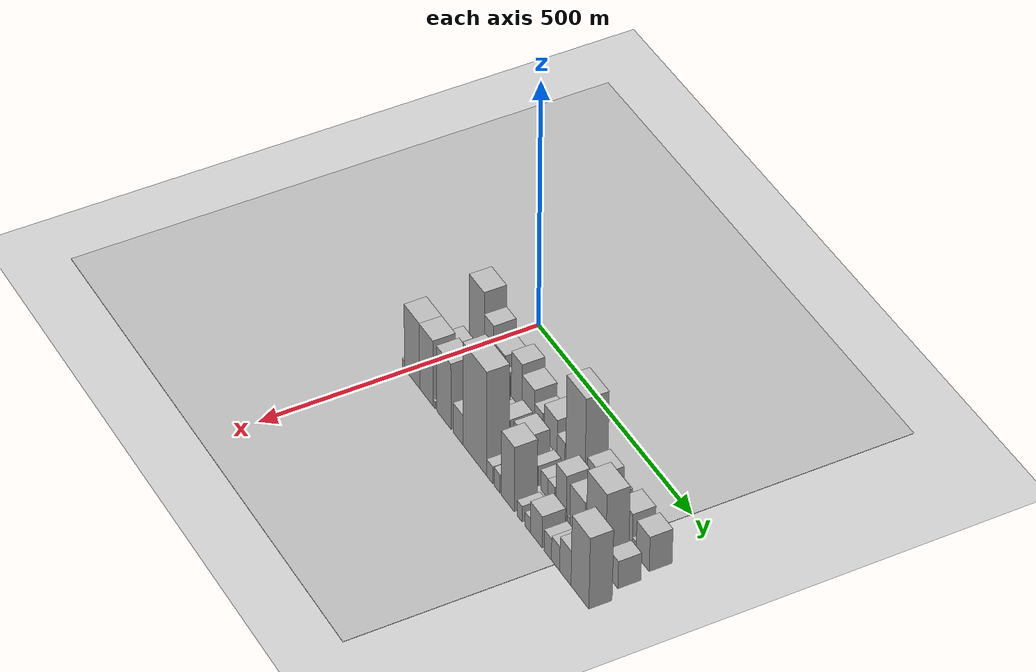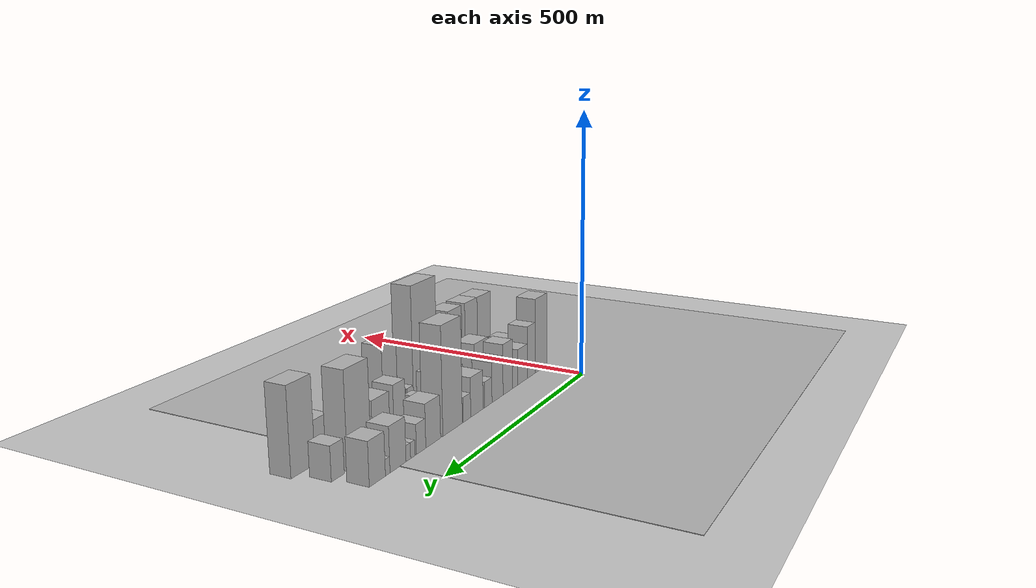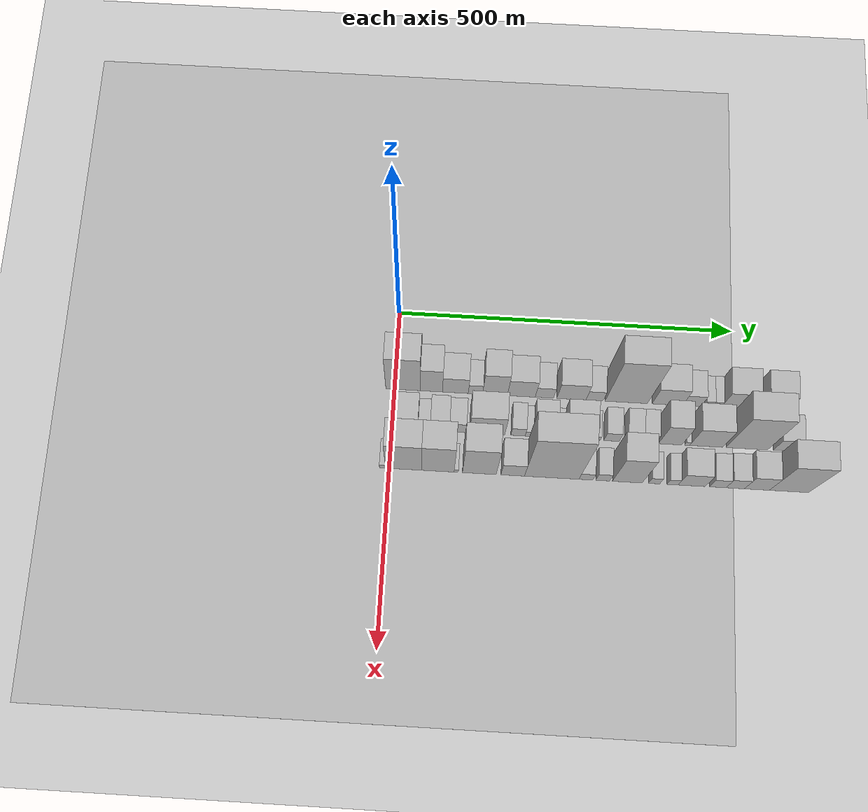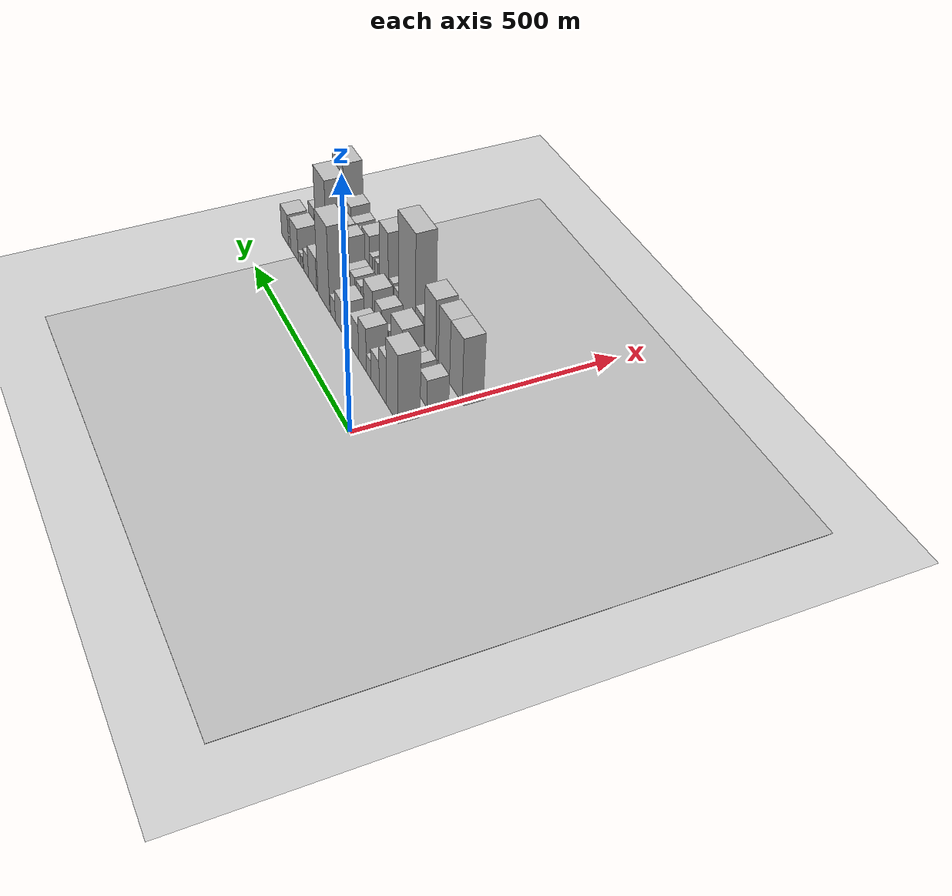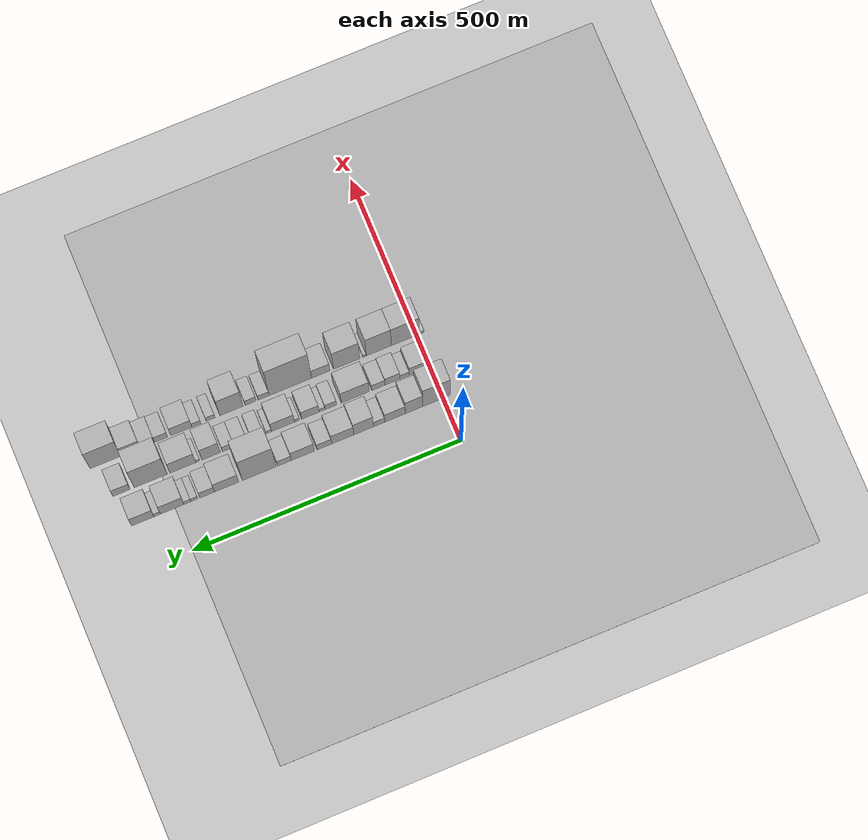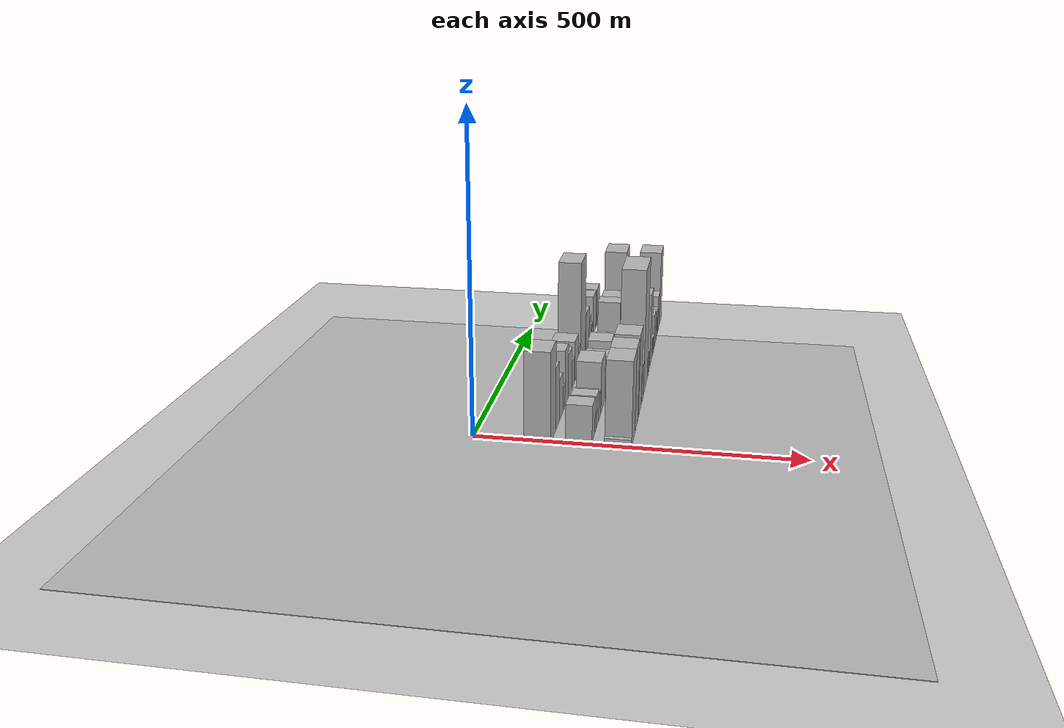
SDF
<sdf version="1.6">
 <world name="default">
  <include><name>ground_plane_1</name><uri>model://HANNAS_ground_plane</uri></include>
  <include>
   <name>ground_plane_2</name>
   <uri>model://HANNAS_ground_plane</uri>
   <pose>100 0 0  0 0 0</pose>
  </include>
  <model name="building_18">
   <static>1</static>
   <pose>100.0000 13.3755 0 0.000000 0.000000 0.000000</pose>
   <link name="link">
    <pose>0 0 73.50 0 0 0</pose>
    <collision name="collision"><geometry><box><size>40.0000 51.3061 147.0000</size></box></geometry></collision>
    <visual name="visual">
     <cast_shadows>0</cast_shadows>
     <geometry><box><size>40.0000 51.3061 147.0000</size></box></geometry>
     <material>
      <script>
       <uri>model://HANNAS_wall/materials/scripts</uri>
       <uri>model://HANNAS_wall/materials/textures</uri>
       <name>vrc/HANNAS_wall</name>
      </script>
     </material>
    </visual>
   </link>
  </model>
  <model name="building_19">
   <static>1</static>
   <pose>100.0000 55.3227 0 0.000000 0.000000 0.000000</pose>
   <link name="link">
    <pose>0 0 51.00 0 0 0</pose>
    <collision name="collision"><geometry><box><size>40.0000 32.5883 102.0000</size></box></geometry></collision>
    <visual name="visual">
     <cast_shadows>0</cast_shadows>
     <geometry><box><size>40.0000 32.5883 102.0000</size></box></geometry>
     <material>
      <script>
       <uri>model://HANNAS_wall/materials/scripts</uri>
       <uri>model://HANNAS_wall/materials/textures</uri>
       <name>vrc/HANNAS_wall</name>
      </script>
     </material>
    </visual>
   </link>
  </model>
  <model name="building_20">
   <static>1</static>
   <pose>100.0000 90.7704 0 0.000000 0.000000 0.000000</pose>
   <link name="link">
    <pose>0 0 34.50 0 0 0</pose>
    <collision name="collision"><geometry><box><size>40.0000 38.3070 69.0000</size></box></geometry></collision>
    <visual name="visual">
     <cast_shadows>0</cast_shadows>
     <geometry><box><size>40.0000 38.3070 69.0000</size></box></geometry>
     <material>
      <script>
       <uri>model://HANNAS_wall/materials/scripts</uri>
       <uri>model://HANNAS_wall/materials/textures</uri>
       <name>vrc/HANNAS_wall</name>
      </script>
     </material>
    </visual>
   </link>
  </model>
  <model name="building_21">
   <static>1</static>
   <pose>100.0000 120.4790 0 0.000000 0.000000 0.000000</pose>
   <link name="link">
    <pose>0 0 21.00 0 0 0</pose>
    <collision name="collision"><geometry><box><size>40.0000 21.1102 42.0000</size></box></geometry></collision>
    <visual name="visual">
     <cast_shadows>0</cast_shadows>
     <geometry><box><size>40.0000 21.1102 42.0000</size></box></geometry>
     <material>
      <script>
       <uri>model://HANNAS_wall/materials/scripts</uri>
       <uri>model://HANNAS_wall/materials/textures</uri>
       <name>vrc/HANNAS_wall</name>
      </script>
     </material>
    </visual>
   </link>
  </model>
  <model name="building_22">
   <static>1</static>
   <pose>100.0000 149.3170 0 0.000000 0.000000 0.000000</pose>
   <link name="link">
    <pose>0 0 48.00 0 0 0</pose>
    <collision name="collision"><geometry><box><size>40.0000 36.5658 96.0000</size></box></geometry></collision>
    <visual name="visual">
     <cast_shadows>0</cast_shadows>
     <geometry><box><size>40.0000 36.5658 96.0000</size></box></geometry>
     <material>
      <script>
       <uri>model://HANNAS_wall/materials/scripts</uri>
       <uri>model://HANNAS_wall/materials/textures</uri>
       <name>vrc/HANNAS_wall</name>
      </script>
     </material>
    </visual>
   </link>
  </model>
  <model name="building_23">
   <static>1</static>
   <pose>100.0000 188.3108 0 0.000000 0.000000 0.000000</pose>
   <link name="link">
    <pose>0 0 37.50 0 0 0</pose>
    <collision name="collision"><geometry><box><size>40.0000 41.4217 75.0000</size></box></geometry></collision>
    <visual name="visual">
     <cast_shadows>0</cast_shadows>
     <geometry><box><size>40.0000 41.4217 75.0000</size></box></geometry>
     <material>
      <script>
       <uri>model://HANNAS_wall/materials/scripts</uri>
       <uri>model://HANNAS_wall/materials/textures</uri>
       <name>vrc/HANNAS_wall</name>
      </script>
     </material>
    </visual>
   </link>
  </model>
  <model name="building_24">
   <static>1</static>
   <pose>100.0000 222.5513 0 0.000000 0.000000 0.000000</pose>
   <link name="link">
    <pose>0 0 24.00 0 0 0</pose>
    <collision name="collision"><geometry><box><size>40.0000 27.0594 48.0000</size></box></geometry></collision>
    <visual name="visual">
     <cast_shadows>0</cast_shadows>
     <geometry><box><size>40.0000 27.0594 48.0000</size></box></geometry>
     <material>
      <script>
       <uri>model://HANNAS_wall/materials/scripts</uri>
       <uri>model://HANNAS_wall/materials/textures</uri>
       <name>vrc/HANNAS_wall</name>
      </script>
     </material>
    </visual>
   </link>
  </model>
  <model name="building_25">
   <static>1</static>
   <pose>100.0000 262.6222 0 0.000000 0.000000 0.000000</pose>
   <link name="link">
    <pose>0 0 36.00 0 0 0</pose>
    <collision name="collision"><geometry><box><size>40.0000 43.0822 72.0000</size></box></geometry></collision>
    <visual name="visual">
     <cast_shadows>0</cast_shadows>
     <geometry><box><size>40.0000 43.0822 72.0000</size></box></geometry>
     <material>
      <script>
       <uri>model://HANNAS_wall/materials/scripts</uri>
       <uri>model://HANNAS_wall/materials/textures</uri>
       <name>vrc/HANNAS_wall</name>
      </script>
     </material>
    </visual>
   </link>
  </model>
  <model name="building_26">
   <static>1</static>
   <pose>100.0000 296.7847 0 0.000000 0.000000 0.000000</pose>
   <link name="link">
    <pose>0 0 22.50 0 0 0</pose>
    <collision name="collision"><geometry><box><size>40.0000 25.2428 45.0000</size></box></geometry></collision>
    <visual name="visual">
     <cast_shadows>0</cast_shadows>
     <geometry><box><size>40.0000 25.2428 45.0000</size></box></geometry>
     <material>
      <script>
       <uri>model://HANNAS_wall/materials/scripts</uri>
       <uri>model://HANNAS_wall/materials/textures</uri>
       <name>vrc/HANNAS_wall</name>
      </script>
     </material>
    </visual>
   </link>
  </model>
  <model name="building_27">
   <static>1</static>
   <pose>100.0000 343.6856 0 0.000000 0.000000 0.000000</pose>
   <link name="link">
    <pose>0 0 94.50 0 0 0</pose>
    <collision name="collision"><geometry><box><size>40.0000 62.5591 189.0000</size></box></geometry></collision>
    <visual name="visual">
     <cast_shadows>0</cast_shadows>
     <geometry><box><size>40.0000 62.5591 189.0000</size></box></geometry>
     <material>
      <script>
       <uri>model://HANNAS_wall/materials/scripts</uri>
       <uri>model://HANNAS_wall/materials/textures</uri>
       <name>vrc/HANNAS_wall</name>
      </script>
     </material>
    </visual>
   </link>
  </model>
  <model name="building_28">
   <static>1</static>
   <pose>100.0000 404.2850 0 0.000000 0.000000 0.000000</pose>
   <link name="link">
    <pose>0 0 37.50 0 0 0</pose>
    <collision name="collision"><geometry><box><size>40.0000 44.6396 75.0000</size></box></geometry></collision>
    <visual name="visual">
     <cast_shadows>0</cast_shadows>
     <geometry><box><size>40.0000 44.6396 75.0000</size></box></geometry>
     <material>
      <script>
       <uri>model://HANNAS_wall/materials/scripts</uri>
       <uri>model://HANNAS_wall/materials/textures</uri>
       <name>vrc/HANNAS_wall</name>
      </script>
     </material>
    </visual>
   </link>
  </model>
  <model name="building_29">
   <static>1</static>
   <pose>100.0000 440.2491 0 0.000000 0.000000 0.000000</pose>
   <link name="link">
    <pose>0 0 25.50 0 0 0</pose>
    <collision name="collision"><geometry><box><size>40.0000 27.2887 51.0000</size></box></geometry></collision>
    <visual name="visual">
     <cast_shadows>0</cast_shadows>
     <geometry><box><size>40.0000 27.2887 51.0000</size></box></geometry>
     <material>
      <script>
       <uri>model://HANNAS_wall/materials/scripts</uri>
       <uri>model://HANNAS_wall/materials/textures</uri>
       <name>vrc/HANNAS_wall</name>
      </script>
     </material>
    </visual>
   </link>
  </model>
  <model name="building_30">
   <static>1</static>
   <pose>100.0000 464.1516 0 0.000000 0.000000 0.000000</pose>
   <link name="link">
    <pose>0 0 13.50 0 0 0</pose>
    <collision name="collision"><geometry><box><size>40.0000 12.5163 27.0000</size></box></geometry></collision>
    <visual name="visual">
     <cast_shadows>0</cast_shadows>
     <geometry><box><size>40.0000 12.5163 27.0000</size></box></geometry>
     <material>
      <script>
       <uri>model://HANNAS_wall/materials/scripts</uri>
       <uri>model://HANNAS_wall/materials/textures</uri>
       <name>vrc/HANNAS_wall</name>
      </script>
     </material>
    </visual>
   </link>
  </model>
  <model name="building_31">
   <static>1</static>
   <pose>100.0000 476.8424 0 0.000000 0.000000 0.000000</pose>
   <link name="link">
    <pose>0 0 13.50 0 0 0</pose>
    <collision name="collision"><geometry><box><size>40.0000 12.8654 27.0000</size></box></geometry></collision>
    <visual name="visual">
     <cast_shadows>0</cast_shadows>
     <geometry><box><size>40.0000 12.8654 27.0000</size></box></geometry>
     <material>
      <script>
       <uri>model://HANNAS_wall/materials/scripts</uri>
       <uri>model://HANNAS_wall/materials/textures</uri>
       <name>vrc/HANNAS_wall</name>
      </script>
     </material>
    </visual>
   </link>
  </model>
  <model name="building_32">
   <static>1</static>
   <pose>100.0000 505.0232 0 0.000000 0.000000 0.000000</pose>
   <link name="link">
    <pose>0 0 37.50 0 0 0</pose>
    <collision name="collision"><geometry><box><size>40.0000 43.4962 75.0000</size></box></geometry></collision>
    <visual name="visual">
     <cast_shadows>0</cast_shadows>
     <geometry><box><size>40.0000 43.4962 75.0000</size></box></geometry>
     <material>
      <script>
       <uri>model://HANNAS_wall/materials/scripts</uri>
       <uri>model://HANNAS_wall/materials/textures</uri>
       <name>vrc/HANNAS_wall</name>
      </script>
     </material>
    </visual>
   </link>
  </model>
  <model name="building_33">
   <static>1</static>
   <pose>100.0000 532.8068 0 0.000000 0.000000 0.000000</pose>
   <link name="link">
    <pose>0 0 13.50 0 0 0</pose>
    <collision name="collision"><geometry><box><size>40.0000 12.0710 27.0000</size></box></geometry></collision>
    <visual name="visual">
     <cast_shadows>0</cast_shadows>
     <geometry><box><size>40.0000 12.0710 27.0000</size></box></geometry>
     <material>
      <script>
       <uri>model://HANNAS_wall/materials/scripts</uri>
       <uri>model://HANNAS_wall/materials/textures</uri>
       <name>vrc/HANNAS_wall</name>
      </script>
     </material>
    </visual>
   </link>
  </model>
  <model name="building_34">
   <static>1</static>
   <pose>100.0000 559.4989 0 0.000000 0.000000 0.000000</pose>
   <link name="link">
    <pose>0 0 36.00 0 0 0</pose>
    <collision name="collision"><geometry><box><size>40.0000 41.3131 72.0000</size></box></geometry></collision>
    <visual name="visual">
     <cast_shadows>0</cast_shadows>
     <geometry><box><size>40.0000 41.3131 72.0000</size></box></geometry>
     <material>
      <script>
       <uri>model://HANNAS_wall/materials/scripts</uri>
       <uri>model://HANNAS_wall/materials/textures</uri>
       <name>vrc/HANNAS_wall</name>
      </script>
     </material>
    </visual>
   </link>
  </model>
  <model name="building_53">
   <static>1</static>
   <pose>160.0000 22.2417 0 0.000000 0.000000 0.000000</pose>
   <link name="link">
    <pose>0 0 30.00 0 0 0</pose>
    <collision name="collision"><geometry><box><size>40.0000 33.8861 60.0000</size></box></geometry></collision>
    <visual name="visual">
     <cast_shadows>0</cast_shadows>
     <geometry><box><size>40.0000 33.8861 60.0000</size></box></geometry>
     <material>
      <script>
       <uri>model://HANNAS_wall/materials/scripts</uri>
       <uri>model://HANNAS_wall/materials/textures</uri>
       <name>vrc/HANNAS_wall</name>
      </script>
     </material>
    </visual>
   </link>
  </model>
  <model name="building_54">
   <static>1</static>
   <pose>160.0000 48.0535 0 0.000000 0.000000 0.000000</pose>
   <link name="link">
    <pose>0 0 15.00 0 0 0</pose>
    <collision name="collision"><geometry><box><size>40.0000 17.7374 30.0000</size></box></geometry></collision>
    <visual name="visual">
     <cast_shadows>0</cast_shadows>
     <geometry><box><size>40.0000 17.7374 30.0000</size></box></geometry>
     <material>
      <script>
       <uri>model://HANNAS_wall/materials/scripts</uri>
       <uri>model://HANNAS_wall/materials/textures</uri>
       <name>vrc/HANNAS_wall</name>
      </script>
     </material>
    </visual>
   </link>
  </model>
  <model name="building_55">
   <static>1</static>
   <pose>160.0000 70.8932 0 0.000000 0.000000 0.000000</pose>
   <link name="link">
    <pose>0 0 27.00 0 0 0</pose>
    <collision name="collision"><geometry><box><size>40.0000 27.9422 54.0000</size></box></geometry></collision>
    <visual name="visual">
     <cast_shadows>0</cast_shadows>
     <geometry><box><size>40.0000 27.9422 54.0000</size></box></geometry>
     <material>
      <script>
       <uri>model://HANNAS_wall/materials/scripts</uri>
       <uri>model://HANNAS_wall/materials/textures</uri>
       <name>vrc/HANNAS_wall</name>
      </script>
     </material>
    </visual>
   </link>
  </model>
  <model name="building_56">
   <static>1</static>
   <pose>160.0000 97.1740 0 0.000000 0.000000 0.000000</pose>
   <link name="link">
    <pose>0 0 22.50 0 0 0</pose>
    <collision name="collision"><geometry><box><size>40.0000 24.6193 45.0000</size></box></geometry></collision>
    <visual name="visual">
     <cast_shadows>0</cast_shadows>
     <geometry><box><size>40.0000 24.6193 45.0000</size></box></geometry>
     <material>
      <script>
       <uri>model://HANNAS_wall/materials/scripts</uri>
       <uri>model://HANNAS_wall/materials/textures</uri>
       <name>vrc/HANNAS_wall</name>
      </script>
     </material>
    </visual>
   </link>
  </model>
  <model name="building_57">
   <static>1</static>
   <pose>160.0000 140.4030 0 0.000000 0.000000 0.000000</pose>
   <link name="link">
    <pose>0 0 43.50 0 0 0</pose>
    <collision name="collision"><geometry><box><size>40.0000 51.8386 87.0000</size></box></geometry></collision>
    <visual name="visual">
     <cast_shadows>0</cast_shadows>
     <geometry><box><size>40.0000 51.8386 87.0000</size></box></geometry>
     <material>
      <script>
       <uri>model://HANNAS_wall/materials/scripts</uri>
       <uri>model://HANNAS_wall/materials/textures</uri>
       <name>vrc/HANNAS_wall</name>
      </script>
     </material>
    </visual>
   </link>
  </model>
  <model name="building_58">
   <static>1</static>
   <pose>160.0000 185.8668 0 0.000000 0.000000 0.000000</pose>
   <link name="link">
    <pose>0 0 19.50 0 0 0</pose>
    <collision name="collision"><geometry><box><size>40.0000 21.0891 39.0000</size></box></geometry></collision>
    <visual name="visual">
     <cast_shadows>0</cast_shadows>
     <geometry><box><size>40.0000 21.0891 39.0000</size></box></geometry>
     <material>
      <script>
       <uri>model://HANNAS_wall/materials/scripts</uri>
       <uri>model://HANNAS_wall/materials/textures</uri>
       <name>vrc/HANNAS_wall</name>
      </script>
     </material>
    </visual>
   </link>
  </model>
  <model name="building_59">
   <static>1</static>
   <pose>160.0000 202.0561 0 0.000000 0.000000 0.000000</pose>
   <link name="link">
    <pose>0 0 12.00 0 0 0</pose>
    <collision name="collision"><geometry><box><size>40.0000 11.2896 24.0000</size></box></geometry></collision>
    <visual name="visual">
     <cast_shadows>0</cast_shadows>
     <geometry><box><size>40.0000 11.2896 24.0000</size></box></geometry>
     <material>
      <script>
       <uri>model://HANNAS_wall/materials/scripts</uri>
       <uri>model://HANNAS_wall/materials/textures</uri>
       <name>vrc/HANNAS_wall</name>
      </script>
     </material>
    </visual>
   </link>
  </model>
  <model name="building_60">
   <static>1</static>
   <pose>160.0000 224.0386 0 0.000000 0.000000 0.000000</pose>
   <link name="link">
    <pose>0 0 31.50 0 0 0</pose>
    <collision name="collision"><geometry><box><size>40.0000 32.6753 63.0000</size></box></geometry></collision>
    <visual name="visual">
     <cast_shadows>0</cast_shadows>
     <geometry><box><size>40.0000 32.6753 63.0000</size></box></geometry>
     <material>
      <script>
       <uri>model://HANNAS_wall/materials/scripts</uri>
       <uri>model://HANNAS_wall/materials/textures</uri>
       <name>vrc/HANNAS_wall</name>
      </script>
     </material>
    </visual>
   </link>
  </model>
  <model name="building_61">
   <static>1</static>
   <pose>160.0000 248.9176 0 0.000000 0.000000 0.000000</pose>
   <link name="link">
    <pose>0 0 10.50 0 0 0</pose>
    <collision name="collision"><geometry><box><size>40.0000 9.0827 21.0000</size></box></geometry></collision>
    <visual name="visual">
     <cast_shadows>0</cast_shadows>
     <geometry><box><size>40.0000 9.0827 21.0000</size></box></geometry>
     <material>
      <script>
       <uri>model://HANNAS_wall/materials/scripts</uri>
       <uri>model://HANNAS_wall/materials/textures</uri>
       <name>vrc/HANNAS_wall</name>
      </script>
     </material>
    </visual>
   </link>
  </model>
  <model name="building_62">
   <static>1</static>
   <pose>160.0000 274.9904 0 0.000000 0.000000 0.000000</pose>
   <link name="link">
    <pose>0 0 36.00 0 0 0</pose>
    <collision name="collision"><geometry><box><size>40.0000 43.0629 72.0000</size></box></geometry></collision>
    <visual name="visual">
     <cast_shadows>0</cast_shadows>
     <geometry><box><size>40.0000 43.0629 72.0000</size></box></geometry>
     <material>
      <script>
       <uri>model://HANNAS_wall/materials/scripts</uri>
       <uri>model://HANNAS_wall/materials/textures</uri>
       <name>vrc/HANNAS_wall</name>
      </script>
     </material>
    </visual>
   </link>
  </model>
  <model name="building_63">
   <static>1</static>
   <pose>160.0000 301.5097 0 0.000000 0.000000 0.000000</pose>
   <link name="link">
    <pose>0 0 10.50 0 0 0</pose>
    <collision name="collision"><geometry><box><size>40.0000 9.9757 21.0000</size></box></geometry></collision>
    <visual name="visual">
     <cast_shadows>0</cast_shadows>
     <geometry><box><size>40.0000 9.9757 21.0000</size></box></geometry>
     <material>
      <script>
       <uri>model://HANNAS_wall/materials/scripts</uri>
       <uri>model://HANNAS_wall/materials/textures</uri>
       <name>vrc/HANNAS_wall</name>
      </script>
     </material>
    </visual>
   </link>
  </model>
  <model name="building_64">
   <static>1</static>
   <pose>160.0000 322.8107 0 0.000000 0.000000 0.000000</pose>
   <link name="link">
    <pose>0 0 21.00 0 0 0</pose>
    <collision name="collision"><geometry><box><size>40.0000 22.6265 42.0000</size></box></geometry></collision>
    <visual name="visual">
     <cast_shadows>0</cast_shadows>
     <geometry><box><size>40.0000 22.6265 42.0000</size></box></geometry>
     <material>
      <script>
       <uri>model://HANNAS_wall/materials/scripts</uri>
       <uri>model://HANNAS_wall/materials/textures</uri>
       <name>vrc/HANNAS_wall</name>
      </script>
     </material>
    </visual>
   </link>
  </model>
  <model name="building_65">
   <static>1</static>
   <pose>160.0000 354.1210 0 0.000000 0.000000 0.000000</pose>
   <link name="link">
    <pose>0 0 21.00 0 0 0</pose>
    <collision name="collision"><geometry><box><size>40.0000 23.9941 42.0000</size></box></geometry></collision>
    <visual name="visual">
     <cast_shadows>0</cast_shadows>
     <geometry><box><size>40.0000 23.9941 42.0000</size></box></geometry>
     <material>
      <script>
       <uri>model://HANNAS_wall/materials/scripts</uri>
       <uri>model://HANNAS_wall/materials/textures</uri>
       <name>vrc/HANNAS_wall</name>
      </script>
     </material>
    </visual>
   </link>
  </model>
  <model name="building_66">
   <static>1</static>
   <pose>160.0000 376.8933 0 0.000000 0.000000 0.000000</pose>
   <link name="link">
    <pose>0 0 21.00 0 0 0</pose>
    <collision name="collision"><geometry><box><size>40.0000 21.5506 42.0000</size></box></geometry></collision>
    <visual name="visual">
     <cast_shadows>0</cast_shadows>
     <geometry><box><size>40.0000 21.5506 42.0000</size></box></geometry>
     <material>
      <script>
       <uri>model://HANNAS_wall/materials/scripts</uri>
       <uri>model://HANNAS_wall/materials/textures</uri>
       <name>vrc/HANNAS_wall</name>
      </script>
     </material>
    </visual>
   </link>
  </model>
  <model name="building_67">
   <static>1</static>
   <pose>160.0000 408.7347 0 0.000000 0.000000 0.000000</pose>
   <link name="link">
    <pose>0 0 48.00 0 0 0</pose>
    <collision name="collision"><geometry><box><size>40.0000 34.1321 96.0000</size></box></geometry></collision>
    <visual name="visual">
     <cast_shadows>0</cast_shadows>
     <geometry><box><size>40.0000 34.1321 96.0000</size></box></geometry>
     <material>
      <script>
       <uri>model://HANNAS_wall/materials/scripts</uri>
       <uri>model://HANNAS_wall/materials/textures</uri>
       <name>vrc/HANNAS_wall</name>
      </script>
     </material>
    </visual>
   </link>
  </model>
  <model name="building_68">
   <static>1</static>
   <pose>160.0000 433.5546 0 0.000000 0.000000 0.000000</pose>
   <link name="link">
    <pose>0 0 9.00 0 0 0</pose>
    <collision name="collision"><geometry><box><size>40.0000 7.5077 18.0000</size></box></geometry></collision>
    <visual name="visual">
     <cast_shadows>0</cast_shadows>
     <geometry><box><size>40.0000 7.5077 18.0000</size></box></geometry>
     <material>
      <script>
       <uri>model://HANNAS_wall/materials/scripts</uri>
       <uri>model://HANNAS_wall/materials/textures</uri>
       <name>vrc/HANNAS_wall</name>
      </script>
     </material>
    </visual>
   </link>
  </model>
  <model name="building_69">
   <static>1</static>
   <pose>160.0000 461.1988 0 0.000000 0.000000 0.000000</pose>
   <link name="link">
    <pose>0 0 45.00 0 0 0</pose>
    <collision name="collision"><geometry><box><size>40.0000 47.7807 90.0000</size></box></geometry></collision>
    <visual name="visual">
     <cast_shadows>0</cast_shadows>
     <geometry><box><size>40.0000 47.7807 90.0000</size></box></geometry>
     <material>
      <script>
       <uri>model://HANNAS_wall/materials/scripts</uri>
       <uri>model://HANNAS_wall/materials/textures</uri>
       <name>vrc/HANNAS_wall</name>
      </script>
     </material>
    </visual>
   </link>
  </model>
  <model name="building_70">
   <static>1</static>
   <pose>160.0000 520.6285 0 0.000000 0.000000 0.000000</pose>
   <link name="link">
    <pose>0 0 81.00 0 0 0</pose>
    <collision name="collision"><geometry><box><size>40.0000 61.0786 162.0000</size></box></geometry></collision>
    <visual name="visual">
     <cast_shadows>0</cast_shadows>
     <geometry><box><size>40.0000 61.0786 162.0000</size></box></geometry>
     <material>
      <script>
       <uri>model://HANNAS_wall/materials/scripts</uri>
       <uri>model://HANNAS_wall/materials/textures</uri>
       <name>vrc/HANNAS_wall</name>
      </script>
     </material>
    </visual>
   </link>
  </model>
  <model name="building_71">
   <static>1</static>
   <pose>160.0000 574.9978 0 0.000000 0.000000 0.000000</pose>
   <link name="link">
    <pose>0 0 28.50 0 0 0</pose>
    <collision name="collision"><geometry><box><size>40.0000 31.6601 57.0000</size></box></geometry></collision>
    <visual name="visual">
     <cast_shadows>0</cast_shadows>
     <geometry><box><size>40.0000 31.6601 57.0000</size></box></geometry>
     <material>
      <script>
       <uri>model://HANNAS_wall/materials/scripts</uri>
       <uri>model://HANNAS_wall/materials/textures</uri>
       <name>vrc/HANNAS_wall</name>
      </script>
     </material>
    </visual>
   </link>
  </model>
  <model name="building_91">
   <static>1</static>
   <pose>220.0000 -9.1065 0 0.000000 0.000000 0.000000</pose>
   <link name="link">
    <pose>0 0 9.00 0 0 0</pose>
    <collision name="collision"><geometry><box><size>40.0000 8.9025 18.0000</size></box></geometry></collision>
    <visual name="visual">
     <cast_shadows>0</cast_shadows>
     <geometry><box><size>40.0000 8.9025 18.0000</size></box></geometry>
     <material>
      <script>
       <uri>model://HANNAS_wall/materials/scripts</uri>
       <uri>model://HANNAS_wall/materials/textures</uri>
       <name>vrc/HANNAS_wall</name>
      </script>
     </material>
    </visual>
   </link>
  </model>
  <model name="building_92">
   <static>1</static>
   <pose>220.0000 21.6102 0 0.000000 0.000000 0.000000</pose>
   <link name="link">
    <pose>0 0 69.00 0 0 0</pose>
    <collision name="collision"><geometry><box><size>40.0000 52.5310 138.0000</size></box></geometry></collision>
    <visual name="visual">
     <cast_shadows>0</cast_shadows>
     <geometry><box><size>40.0000 52.5310 138.0000</size></box></geometry>
     <material>
      <script>
       <uri>model://HANNAS_wall/materials/scripts</uri>
       <uri>model://HANNAS_wall/materials/textures</uri>
       <name>vrc/HANNAS_wall</name>
      </script>
     </material>
    </visual>
   </link>
  </model>
  <model name="building_93">
   <static>1</static>
   <pose>220.0000 71.4628 0 0.000000 0.000000 0.000000</pose>
   <link name="link">
    <pose>0 0 69.00 0 0 0</pose>
    <collision name="collision"><geometry><box><size>40.0000 47.1743 138.0000</size></box></geometry></collision>
    <visual name="visual">
     <cast_shadows>0</cast_shadows>
     <geometry><box><size>40.0000 47.1743 138.0000</size></box></geometry>
     <material>
      <script>
       <uri>model://HANNAS_wall/materials/scripts</uri>
       <uri>model://HANNAS_wall/materials/textures</uri>
       <name>vrc/HANNAS_wall</name>
      </script>
     </material>
    </visual>
   </link>
  </model>
  <model name="building_94">
   <static>1</static>
   <pose>220.0000 98.1466 0 0.000000 0.000000 0.000000</pose>
   <link name="link">
    <pose>0 0 7.50 0 0 0</pose>
    <collision name="collision"><geometry><box><size>40.0000 6.1933 15.0000</size></box></geometry></collision>
    <visual name="visual">
     <cast_shadows>0</cast_shadows>
     <geometry><box><size>40.0000 6.1933 15.0000</size></box></geometry>
     <material>
      <script>
       <uri>model://HANNAS_wall/materials/scripts</uri>
       <uri>model://HANNAS_wall/materials/textures</uri>
       <name>vrc/HANNAS_wall</name>
      </script>
     </material>
    </visual>
   </link>
  </model>
  <model name="building_95">
   <static>1</static>
   <pose>220.0000 131.7582 0 0.000000 0.000000 0.000000</pose>
   <link name="link">
    <pose>0 0 69.00 0 0 0</pose>
    <collision name="collision"><geometry><box><size>40.0000 49.0299 138.0000</size></box></geometry></collision>
    <visual name="visual">
     <cast_shadows>0</cast_shadows>
     <geometry><box><size>40.0000 49.0299 138.0000</size></box></geometry>
     <material>
      <script>
       <uri>model://HANNAS_wall/materials/scripts</uri>
       <uri>model://HANNAS_wall/materials/textures</uri>
       <name>vrc/HANNAS_wall</name>
      </script>
     </material>
    </visual>
   </link>
  </model>
  <model name="building_96">
   <static>1</static>
   <pose>220.0000 180.3369 0 0.000000 0.000000 0.000000</pose>
   <link name="link">
    <pose>0 0 31.50 0 0 0</pose>
    <collision name="collision"><geometry><box><size>40.0000 34.1276 63.0000</size></box></geometry></collision>
    <visual name="visual">
     <cast_shadows>0</cast_shadows>
     <geometry><box><size>40.0000 34.1276 63.0000</size></box></geometry>
     <material>
      <script>
       <uri>model://HANNAS_wall/materials/scripts</uri>
       <uri>model://HANNAS_wall/materials/textures</uri>
       <name>vrc/HANNAS_wall</name>
      </script>
     </material>
    </visual>
   </link>
  </model>
  <model name="building_97">
   <static>1</static>
   <pose>220.0000 236.9526 0 0.000000 0.000000 0.000000</pose>
   <link name="link">
    <pose>0 0 108.00 0 0 0</pose>
    <collision name="collision"><geometry><box><size>40.0000 79.1038 216.0000</size></box></geometry></collision>
    <visual name="visual">
     <cast_shadows>0</cast_shadows>
     <geometry><box><size>40.0000 79.1038 216.0000</size></box></geometry>
     <material>
      <script>
       <uri>model://HANNAS_wall/materials/scripts</uri>
       <uri>model://HANNAS_wall/materials/textures</uri>
       <name>vrc/HANNAS_wall</name>
      </script>
     </material>
    </visual>
   </link>
  </model>
  <model name="building_98">
   <static>1</static>
   <pose>220.0000 286.7004 0 0.000000 0.000000 0.000000</pose>
   <link name="link">
    <pose>0 0 18.00 0 0 0</pose>
    <collision name="collision"><geometry><box><size>40.0000 20.3917 36.0000</size></box></geometry></collision>
    <visual name="visual">
     <cast_shadows>0</cast_shadows>
     <geometry><box><size>40.0000 20.3917 36.0000</size></box></geometry>
     <material>
      <script>
       <uri>model://HANNAS_wall/materials/scripts</uri>
       <uri>model://HANNAS_wall/materials/textures</uri>
       <name>vrc/HANNAS_wall</name>
      </script>
     </material>
    </visual>
   </link>
  </model>
  <model name="building_99">
   <static>1</static>
   <pose>220.0000 311.0436 0 0.000000 0.000000 0.000000</pose>
   <link name="link">
    <pose>0 0 19.50 0 0 0</pose>
    <collision name="collision"><geometry><box><size>40.0000 20.2948 39.0000</size></box></geometry></collision>
    <visual name="visual">
     <cast_shadows>0</cast_shadows>
     <geometry><box><size>40.0000 20.2948 39.0000</size></box></geometry>
     <material>
      <script>
       <uri>model://HANNAS_wall/materials/scripts</uri>
       <uri>model://HANNAS_wall/materials/textures</uri>
       <name>vrc/HANNAS_wall</name>
      </script>
     </material>
    </visual>
   </link>
  </model>
  <model name="building_100">
   <static>1</static>
   <pose>220.0000 346.7632 0 0.000000 0.000000 0.000000</pose>
   <link name="link">
    <pose>0 0 67.50 0 0 0</pose>
    <collision name="collision"><geometry><box><size>40.0000 43.1445 135.0000</size></box></geometry></collision>
    <visual name="visual">
     <cast_shadows>0</cast_shadows>
     <geometry><box><size>40.0000 43.1445 135.0000</size></box></geometry>
     <material>
      <script>
       <uri>model://HANNAS_wall/materials/scripts</uri>
       <uri>model://HANNAS_wall/materials/textures</uri>
       <name>vrc/HANNAS_wall</name>
      </script>
     </material>
    </visual>
   </link>
  </model>
  <model name="building_101">
   <static>1</static>
   <pose>220.0000 385.6161 0 0.000000 0.000000 0.000000</pose>
   <link name="link">
    <pose>0 0 16.50 0 0 0</pose>
    <collision name="collision"><geometry><box><size>40.0000 16.5612 33.0000</size></box></geometry></collision>
    <visual name="visual">
     <cast_shadows>0</cast_shadows>
     <geometry><box><size>40.0000 16.5612 33.0000</size></box></geometry>
     <material>
      <script>
       <uri>model://HANNAS_wall/materials/scripts</uri>
       <uri>model://HANNAS_wall/materials/textures</uri>
       <name>vrc/HANNAS_wall</name>
      </script>
     </material>
    </visual>
   </link>
  </model>
  <model name="building_102">
   <static>1</static>
   <pose>220.0000 412.2042 0 0.000000 0.000000 0.000000</pose>
   <link name="link">
    <pose>0 0 15.00 0 0 0</pose>
    <collision name="collision"><geometry><box><size>40.0000 16.6149 30.0000</size></box></geometry></collision>
    <visual name="visual">
     <cast_shadows>0</cast_shadows>
     <geometry><box><size>40.0000 16.6149 30.0000</size></box></geometry>
     <material>
      <script>
       <uri>model://HANNAS_wall/materials/scripts</uri>
       <uri>model://HANNAS_wall/materials/textures</uri>
       <name>vrc/HANNAS_wall</name>
      </script>
     </material>
    </visual>
   </link>
  </model>
  <model name="building_103">
   <static>1</static>
   <pose>220.0000 440.0511 0 0.000000 0.000000 0.000000</pose>
   <link name="link">
    <pose>0 0 33.00 0 0 0</pose>
    <collision name="collision"><geometry><box><size>40.0000 39.0789 66.0000</size></box></geometry></collision>
    <visual name="visual">
     <cast_shadows>0</cast_shadows>
     <geometry><box><size>40.0000 39.0789 66.0000</size></box></geometry>
     <material>
      <script>
       <uri>model://HANNAS_wall/materials/scripts</uri>
       <uri>model://HANNAS_wall/materials/textures</uri>
       <name>vrc/HANNAS_wall</name>
      </script>
     </material>
    </visual>
   </link>
  </model>
  <model name="building_104">
   <static>1</static>
   <pose>220.0000 477.6403 0 0.000000 0.000000 0.000000</pose>
   <link name="link">
    <pose>0 0 22.50 0 0 0</pose>
    <collision name="collision"><geometry><box><size>40.0000 24.0994 45.0000</size></box></geometry></collision>
    <visual name="visual">
     <cast_shadows>0</cast_shadows>
     <geometry><box><size>40.0000 24.0994 45.0000</size></box></geometry>
     <material>
      <script>
       <uri>model://HANNAS_wall/materials/scripts</uri>
       <uri>model://HANNAS_wall/materials/textures</uri>
       <name>vrc/HANNAS_wall</name>
      </script>
     </material>
    </visual>
   </link>
  </model>
  <model name="building_105">
   <static>1</static>
   <pose>220.0000 502.9719 0 0.000000 0.000000 0.000000</pose>
   <link name="link">
    <pose>0 0 25.50 0 0 0</pose>
    <collision name="collision"><geometry><box><size>40.0000 26.5638 51.0000</size></box></geometry></collision>
    <visual name="visual">
     <cast_shadows>0</cast_shadows>
     <geometry><box><size>40.0000 26.5638 51.0000</size></box></geometry>
     <material>
      <script>
       <uri>model://HANNAS_wall/materials/scripts</uri>
       <uri>model://HANNAS_wall/materials/textures</uri>
       <name>vrc/HANNAS_wall</name>
      </script>
     </material>
    </visual>
   </link>
  </model>
  <model name="building_106">
   <static>1</static>
   <pose>220.0000 534.2882 0 0.000000 0.000000 0.000000</pose>
   <link name="link">
    <pose>0 0 36.00 0 0 0</pose>
    <collision name="collision"><geometry><box><size>40.0000 36.0689 72.0000</size></box></geometry></collision>
    <visual name="visual">
     <cast_shadows>0</cast_shadows>
     <geometry><box><size>40.0000 36.0689 72.0000</size></box></geometry>
     <material>
      <script>
       <uri>model://HANNAS_wall/materials/scripts</uri>
       <uri>model://HANNAS_wall/materials/textures</uri>
       <name>vrc/HANNAS_wall</name>
      </script>
     </material>
    </visual>
   </link>
  </model>
  <model name="building_107">
   <static>1</static>
   <pose>220.0000 580.7271 0 0.000000 0.000000 0.000000</pose>
   <link name="link">
    <pose>0 0 73.50 0 0 0</pose>
    <collision name="collision"><geometry><box><size>40.0000 56.8089 147.0000</size></box></geometry></collision>
    <visual name="visual">
     <cast_shadows>0</cast_shadows>
     <geometry><box><size>40.0000 56.8089 147.0000</size></box></geometry>
     <material>
      <script>
       <uri>model://HANNAS_wall/materials/scripts</uri>
       <uri>model://HANNAS_wall/materials/textures</uri>
       <name>vrc/HANNAS_wall</name>
      </script>
     </material>
    </visual>
   </link>
  </model>
 </world>
</sdf>
